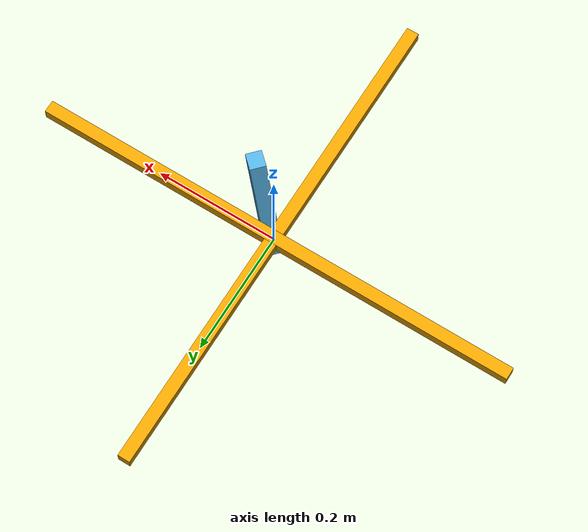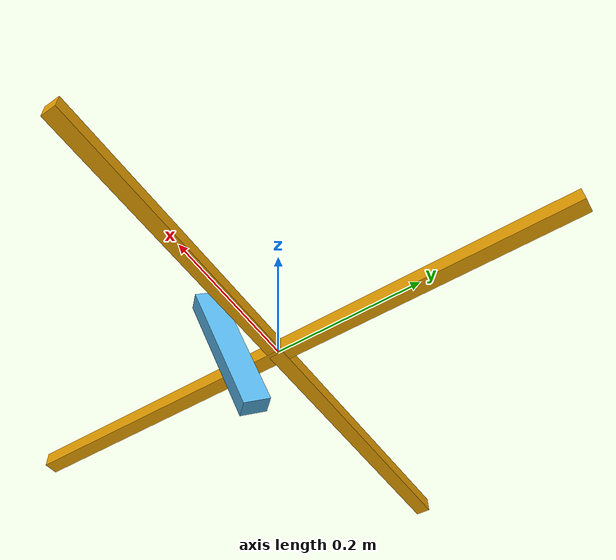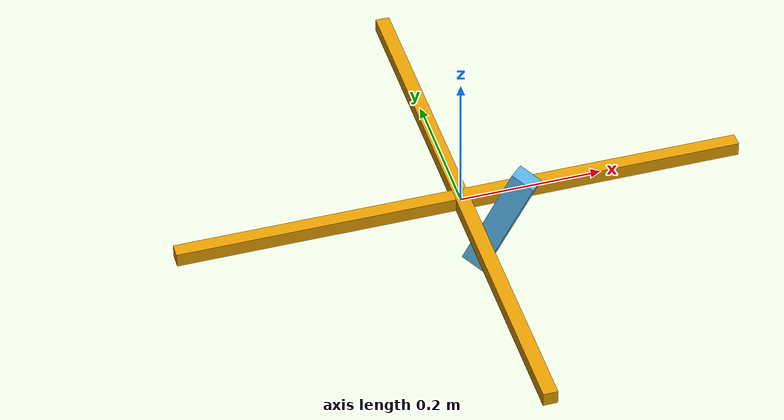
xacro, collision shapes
<?xml version="1.0"?>
<robot
  name="qc13"
  xmlns:xacro="http://ros.org/wiki/xacro"
>
  <link name="base_link">
     <inertial>
      <mass value="0.1" />
      <origin xyz="0 0 0" rpy="0 0 0" />
      <inertia ixx="0.001" ixy="0.001" ixz="0.001" iyy="0.001" iyz="0.001" izz="0.001" />
    </inertial>

    <visual name="arm1">
      <origin xyz="0 0 0" rpy="0 0 0" />
      <geometry>
        <box size="0.8 0.02 0.02" />
      </geometry>
    </visual>
    <collision name="arm1">
      <origin xyz="0 0 0" rpy="0 0 0" />
      <geometry>
        <box size="0.8 0.02 0.02" />
      </geometry>
    </collision>

    <visual name="arm2">
      <origin xyz="0 0 0" rpy="0 0 1.570796" />
      <geometry>
        <box size="0.8 0.02 0.02" />
      </geometry>
    </visual>
    <collision name="arm2">
      <origin xyz="0 0 0" rpy="0 0 1.570796" />
      <geometry>
        <box size="0.8 0.02 0.02" />
      </geometry>
    </collision>
  </link>

  <!-- Asus Xiton Live Pro -->
  <xacro:include filename="qc13_xtion_aruco.urdf.xacro" />
  <xacro:asus_camera name="camera" parent="base_link">
    <origin xyz="0.044 -0.044 -0.01" rpy="-1.6232 0.3927 -0.7854"/>
  </xacro:asus_camera>

  <!-- Gazebo ROS IMU -->
  <xacro:include filename="qc13_aruco_sensors.urdf.xacro" />

</robot>

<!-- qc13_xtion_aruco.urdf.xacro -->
<robot xmlns:xacro="http://ros.org/wiki/xacro">
    <xacro:property name="M_PI" value="3.1415926535897931" />

    <xacro:macro name="asus_camera_model" params="name parent *origin">
      <joint name="${name}_joint" type="fixed">
        <xacro:insert_block name="origin" />
        <parent link="${parent}"/>
        <child link="${name}_link"/>
      </joint>

      <link name="${name}_link">
        <inertial>
          <mass value="0.200" />
          <origin xyz="0 0 0" rpy="0 0 0" />
          <inertia ixx="5.8083e-4" ixy="0" ixz="0" iyy="3.0833e-5" iyz="0" izz="5.9083e-4" />
        </inertial>
        <visual>
          <origin xyz="0 0 0" rpy="0 0 0" />
          <geometry>
            <mesh filename="package://hector_sensors_description/meshes/asus_camera/asus_camera_simple.dae"/>
          </geometry>
        </visual>
        <collision>
          <origin xyz="0 0 0" rpy="0 0 0" />
          <geometry>
            <box size="0.035 0.185 0.025"/>
          </geometry>
        </collision>
      </link>

      <joint name="${name}_depth_joint" type="fixed">
        <origin xyz="0.0 0.049 0.0" rpy="0 0 0" />
        <parent link="${name}_link" />
        <child link="${name}_depth_frame"/>
      </joint>

      <link name="${name}_depth_frame"/>

      <joint name="${name}_depth_optical_joint" type="fixed">
        <origin xyz="0 0 0" rpy="${-M_PI/2} 0.0 ${-M_PI/2}" />
        <parent link="${name}_depth_frame" />
        <child link="${name}_depth_optical_frame"/>
      </joint>

      <link name="${name}_depth_optical_frame"/>

      <joint name="${name}_rgb_joint" type="fixed">
        <origin xyz="0.0 0.022 0.0" rpy="0 0 0" />
        <parent link="${name}_link" />
        <child link="${name}_rgb_frame"/>
      </joint>

      <link name="${name}_rgb_frame"/>

      <joint name="${name}_rgb_optical_joint" type="fixed">
        <origin xyz="0 0 0" rpy="${-M_PI/2} 0.0 ${-M_PI/2}" />
        <parent link="${name}_rgb_frame" />
        <child link="${name}_rgb_optical_frame"/>
      </joint>

      <link name="${name}_rgb_optical_frame"/>
    </xacro:macro>

    <xacro:macro name="asus_camera" params="name parent *origin">
      <xacro:asus_camera_model name="${name}" parent="${parent}">
        <xacro:insert_block name="origin" />
      </xacro:asus_camera_model>

      <!-- ASUS Xtion PRO camera for simulation -->
      <gazebo reference="${name}_depth_frame">
        <sensor type="depth" name="${name}">
          <update_rate>20</update_rate>
          <camera>
            <horizontal_fov>${62.8 * M_PI/180.0}</horizontal_fov>
            <image>
              <format>R8G8B8</format>
              <width>640</width>
              <height>480</height>
            </image>
            <clip>
              <near>0.5</near>
              <far>9</far>
            </clip>
          </camera>
          <plugin name="${name}_camera_controller" filename="libgazebo_ros_openni_kinect.so">
            <alwaysOn>true</alwaysOn>
            <updateRate>20</updateRate>
             <imageTopicName>${name}/rgb/image_raw</imageTopicName>
            <cameraInfoTopicName>${name}/rgb/camera_info</cameraInfoTopicName>
            <depthImageTopicName>${name}/depth/image_raw</depthImageTopicName>
            <depthImageCameraInfoTopicName>${name}/depth/camera_info</depthImageCameraInfoTopicName>
            <pointCloudTopicName>${name}/depth/points</pointCloudTopicName>
            <frameName>${name}_depth_optical_frame</frameName>
            <pointCloudCutoff>0.1</pointCloudCutoff>
            <pointCloudCutoffMax>9</pointCloudCutoffMax>
            <distortion_k1>0.0</distortion_k1>
            <distortion_k2>0.0</distortion_k2>
            <distortion_k3>0.0</distortion_k3>
            <distortion_t1>0.0</distortion_t1>
            <distortion_t2>0.0</distortion_t2>
          </plugin>
        </sensor>
      </gazebo>
    </xacro:macro>
  </robot>
